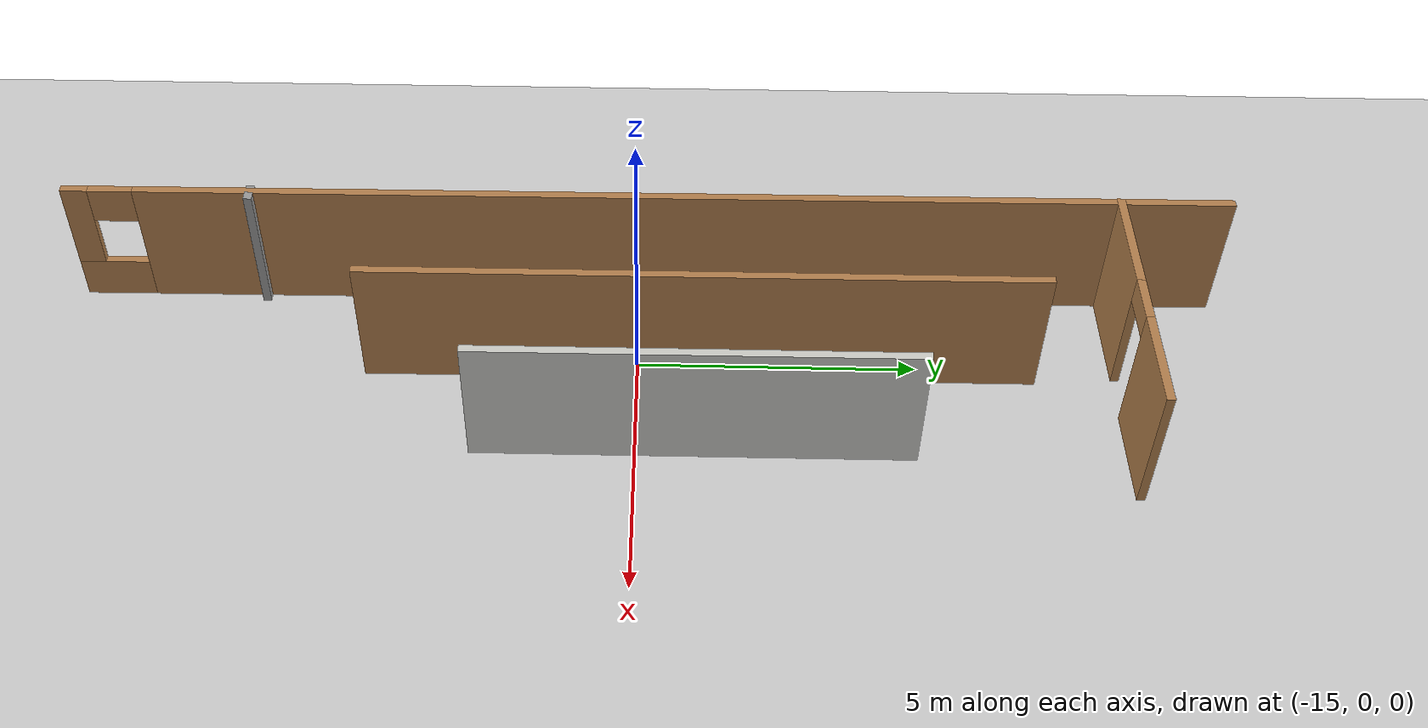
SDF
<sdf version="1.6">
 <world name="default">
  <model name="ground_plane">
   <static>1</static>
   <link name="link">
    <collision name="collision">
     <geometry><plane><normal>0 0 1</normal><size>100 100</size></plane></geometry>
     <surface><friction><ode><mu>100</mu><mu2>50</mu2></ode></friction></surface>
    </collision>
    <visual name="visual">
     <cast_shadows>0</cast_shadows>
     <geometry><plane><normal>0 0 1</normal><size>100 100</size></plane></geometry>
     <material>
      <script><uri>file://media/materials/scripts/gazebo.material</uri><name>Gazebo/Grey</name></script>
     </material>
    </visual>
   </link>
  </model>
  <model name="Building">
   <pose>5.7189 -2.01548 0 0 -0 0</pose>
   <link name="Wall_0">
    <pose>-22.4887 2.1266 0 0 0 -1.56733</pose>
    <visual name="Wall_0_Visual_0">
     <pose>-0.641349 0 1.25 0 -0 0</pose>
     <geometry><box><size>19.6144 0.15 2.5</size></box></geometry>
     <material>
      <script><uri>file://media/materials/scripts/gazebo.material</uri><name>Gazebo/Wood</name></script>
      <ambient>1 1 1 1</ambient>
     </material>
     <meta><layer>0</layer></meta>
    </visual>
    <collision name="Wall_0_Collision_0">
     <geometry><box><size>19.6144 0.15 2.5</size></box></geometry>
     <pose>-0.641349 0 1.25 0 -0 0</pose>
    </collision>
    <visual name="Wall_0_Visual_1">
     <pose>9.80721 0 0.4 0 -0 0</pose>
     <geometry><box><size>1.2827 0.15 0.8</size></box></geometry>
     <material>
      <script><uri>file://media/materials/scripts/gazebo.material</uri><name>Gazebo/Wood</name></script>
      <ambient>1 1 1 1</ambient>
     </material>
     <meta><layer>0</layer></meta>
    </visual>
    <collision name="Wall_0_Collision_1">
     <geometry><box><size>1.2827 0.15 0.8</size></box></geometry>
     <pose>9.80721 0 0.4 0 -0 0</pose>
    </collision>
    <visual name="Wall_0_Visual_2">
     <pose>10.2072 0 1.65 0 -0 0</pose>
     <geometry><box><size>0.482698 0.15 1.7</size></box></geometry>
     <material>
      <script><uri>file://media/materials/scripts/gazebo.material</uri><name>Gazebo/Wood</name></script>
      <ambient>1 1 1 1</ambient>
     </material>
     <meta><layer>0</layer></meta>
    </visual>
    <collision name="Wall_0_Collision_2">
     <geometry><box><size>0.482698 0.15 1.7</size></box></geometry>
     <pose>10.2072 0 1.65 0 -0 0</pose>
    </collision>
    <visual name="Wall_0_Visual_3">
     <pose>9.56587 0 2.15 0 -0 0</pose>
     <geometry><box><size>0.8 0.15 0.7</size></box></geometry>
     <material>
      <script><uri>file://media/materials/scripts/gazebo.material</uri><name>Gazebo/Wood</name></script>
      <ambient>1 1 1 1</ambient>
     </material>
     <meta><layer>0</layer></meta>
    </visual>
    <collision name="Wall_0_Collision_3">
     <geometry><box><size>0.8 0.15 0.7</size></box></geometry>
     <pose>9.56587 0 2.15 0 -0 0</pose>
    </collision>
   </link>
   <link name="Wall_45">
    <collision name="Wall_45_Collision">
     <geometry><box><size>0.359336 0.15 2.5</size></box></geometry>
     <pose>0 0 1.25 0 -0 0</pose>
    </collision>
    <visual name="Wall_45_Visual">
     <pose>0 0 1.25 0 -0 0</pose>
     <geometry><box><size>0.359336 0.15 2.5</size></box></geometry>
     <material>
      <script><uri>file://media/materials/scripts/gazebo.material</uri><name>Gazebo/Grey</name></script>
      <ambient>1 1 1 1</ambient>
     </material>
     <meta><layer>0</layer></meta>
    </visual>
    <pose>-22.42 -4.93812 0 0 0 -0.002083</pose>
   </link>
   <link name="Wall_57">
    <collision name="Wall_57_Collision">
     <geometry><box><size>12 0.15 2.5</size></box></geometry>
     <pose>0 0 1.25 0 -0 0</pose>
    </collision>
    <visual name="Wall_57_Visual">
     <pose>0 0 1.25 0 -0 0</pose>
     <geometry><box><size>12 0.15 2.5</size></box></geometry>
     <material>
      <script><uri>file://media/materials/scripts/gazebo.material</uri><name>Gazebo/Wood</name></script>
      <ambient>1 1 1 1</ambient>
     </material>
     <meta><layer>0</layer></meta>
    </visual>
    <pose>-20.4773 3.132 0 0 -0 1.5708</pose>
   </link>
   <link name="Wall_62">
    <collision name="Wall_62_Collision">
     <geometry><box><size>7.75 0.15 2.5</size></box></geometry>
     <pose>0 0 1.25 0 -0 0</pose>
    </collision>
    <visual name="Wall_62_Visual">
     <pose>0 0 1.25 0 -0 0</pose>
     <geometry><box><size>7.75 0.15 2.5</size></box></geometry>
     <material>
      <script><uri>file://media/materials/scripts/gazebo.material</uri><name>Gazebo/CeilingTiled</name></script>
      <ambient>1 1 1 1</ambient>
     </material>
     <meta><layer>0</layer></meta>
    </visual>
    <pose>-18.6301 3.02609 0 0 -0 1.5708</pose>
   </link>
   <link name="Wall_70">
    <pose>-20.1747 10.5811 0 0 -0 0.008085</pose>
    <visual name="Wall_70_Visual_0">
     <pose>-1.38485 0 1.25 0 -0 0</pose>
     <geometry><box><size>2.08033 0.15 2.5</size></box></geometry>
     <material>
      <script><uri>file://media/materials/scripts/gazebo.material</uri><name>Gazebo/Wood</name></script>
      <ambient>1 1 1 1</ambient>
     </material>
     <meta><layer>0</layer></meta>
    </visual>
    <collision name="Wall_70_Collision_0">
     <geometry><box><size>2.08033 0.15 2.5</size></box></geometry>
     <pose>-1.38485 0 1.25 0 -0 0</pose>
    </collision>
    <visual name="Wall_70_Visual_1">
     <pose>1.49016 0 1.25 0 -0 0</pose>
     <geometry><box><size>1.8697 0.15 2.5</size></box></geometry>
     <material>
      <script><uri>file://media/materials/scripts/gazebo.material</uri><name>Gazebo/Wood</name></script>
      <ambient>1 1 1 1</ambient>
     </material>
     <meta><layer>0</layer></meta>
    </visual>
    <collision name="Wall_70_Collision_1">
     <geometry><box><size>1.8697 0.15 2.5</size></box></geometry>
     <pose>1.49016 0 1.25 0 -0 0</pose>
    </collision>
    <visual name="Wall_70_Visual_2">
     <pose>0.105312 0 2.25 0 -0 0</pose>
     <geometry><box><size>0.9 0.15 0.5</size></box></geometry>
     <material>
      <script><uri>file://media/materials/scripts/gazebo.material</uri><name>Gazebo/Wood</name></script>
      <ambient>1 1 1 1</ambient>
     </material>
     <meta><layer>0</layer></meta>
    </visual>
    <collision name="Wall_70_Collision_2">
     <geometry><box><size>0.9 0.15 0.5</size></box></geometry>
     <pose>0.105312 0 2.25 0 -0 0</pose>
    </collision>
   </link>
   <static>1</static>
  </model>
 </world>
</sdf>
